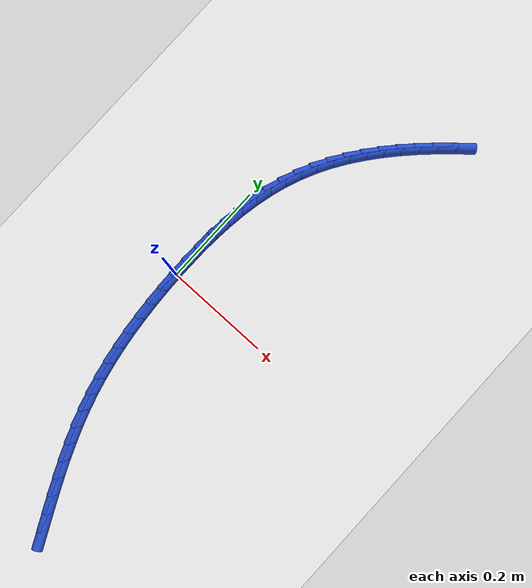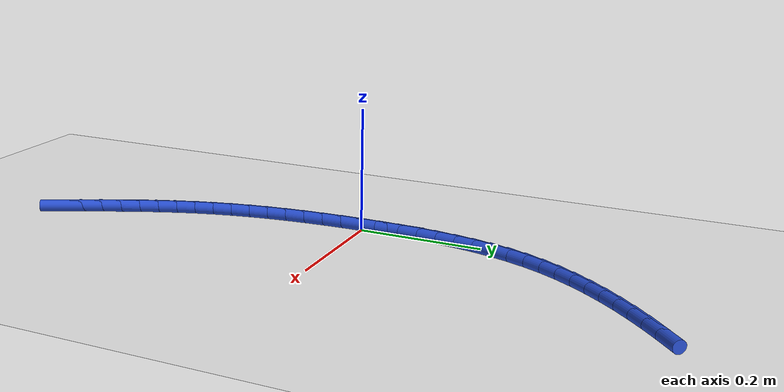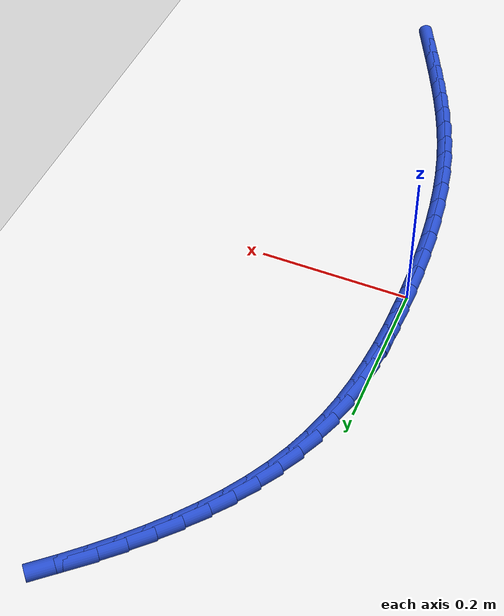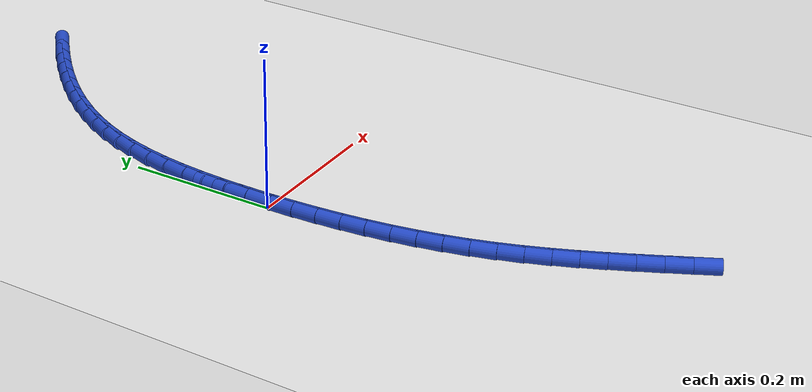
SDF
<sdf version="1.6">
 <world name="default">
  <model name="ground_plane">
   <static>1</static>
   <link name="link">
    <collision name="collision">
     <geometry><plane><normal>0 0 1</normal><size>100 100</size></plane></geometry>
     <surface><friction><ode><mu>100</mu><mu2>50</mu2></ode></friction></surface>
    </collision>
    <visual name="visual">
     <cast_shadows>0</cast_shadows>
     <geometry><plane><normal>0 0 1</normal><size>100 100</size></plane></geometry>
     <material>
      <script><uri>file://media/materials/scripts/gazebo.material</uri><name>Gazebo/WhiteGlow</name></script>
     </material>
    </visual>
   </link>
  </model>
  <model name="line">
   <link name="link_0">
    <pose>-1.2576745200831851e-17 -1.3877787807814457e-17 0.01 0 1.57 -1.5650814311013574</pose>
    <collision name="collision">
     <geometry><cylinder><radius>0.01</radius><length>0.08</length></cylinder></geometry>
    </collision>
    <visual name="visual">
     <material>
      <script><name>Gazebo/Blue</name><uri>file://media/materials/scripts/gazebo.material</uri></script>
     </material>
     <geometry><cylinder><radius>0.01</radius><length>0.08</length></cylinder></geometry>
    </visual>
   </link>
   <link name="link_1">
    <pose>-0.00018875704975839807 0.03302859840996887 0.01 0 1.57 1.5498820778139464</pose>
    <collision name="collision">
     <geometry><cylinder><radius>0.01</radius><length>0.08</length></cylinder></geometry>
    </collision>
    <visual name="visual">
     <material>
      <script><name>Gazebo/Blue</name><uri>file://media/materials/scripts/gazebo.material</uri></script>
     </material>
     <geometry><cylinder><radius>0.01</radius><length>0.08</length></cylinder></geometry>
    </visual>
   </link>
   <link name="link_2">
    <pose>0.0005019491045792355 0.06604940856360342 0.01 0 1.57 1.5181562055893476</pose>
    <collision name="collision">
     <geometry><cylinder><radius>0.01</radius><length>0.08</length></cylinder></geometry>
    </collision>
    <visual name="visual">
     <material>
      <script><name>Gazebo/Blue</name><uri>file://media/materials/scripts/gazebo.material</uri></script>
     </material>
     <geometry><cylinder><radius>0.01</radius><length>0.08</length></cylinder></geometry>
    </visual>
   </link>
   <link name="link_3">
    <pose>0.0022342758914280373 0.09892787406148792 0.01 0 1.57 1.48097839300382</pose>
    <collision name="collision">
     <geometry><cylinder><radius>0.01</radius><length>0.08</length></cylinder></geometry>
    </collision>
    <visual name="visual">
     <material>
      <script><name>Gazebo/Blue</name><uri>file://media/materials/scripts/gazebo.material</uri></script>
     </material>
     <geometry><cylinder><radius>0.01</radius><length>0.08</length></cylinder></geometry>
    </visual>
   </link>
   <link name="link_4">
    <pose>0.005170380739203151 0.1315294385042066 0.01 0 1.57 1.437938783030213</pose>
    <collision name="collision">
     <geometry><cylinder><radius>0.01</radius><length>0.08</length></cylinder></geometry>
    </collision>
    <visual name="visual">
     <material>
      <script><name>Gazebo/Blue</name><uri>file://media/materials/scripts/gazebo.material</uri></script>
     </material>
     <geometry><cylinder><radius>0.01</radius><length>0.08</length></cylinder></geometry>
    </visual>
   </link>
   <link name="link_5">
    <pose>0.009472421076319728 0.16371954549234355 0.01 0 1.57 1.3885987296315616</pose>
    <collision name="collision">
     <geometry><cylinder><radius>0.01</radius><length>0.08</length></cylinder></geometry>
    </collision>
    <visual name="visual">
     <material>
      <script><name>Gazebo/Blue</name><uri>file://media/materials/scripts/gazebo.material</uri></script>
     </material>
     <geometry><cylinder><radius>0.01</radius><length>0.08</length></cylinder></geometry>
    </visual>
   </link>
   <link name="link_6">
    <pose>0.015302554331192916 0.19536363862648312 0.01 0 1.57 1.332531108004683</pose>
    <collision name="collision">
     <geometry><cylinder><radius>0.01</radius><length>0.08</length></cylinder></geometry>
    </collision>
    <visual name="visual">
     <material>
      <script><name>Gazebo/Blue</name><uri>file://media/materials/scripts/gazebo.material</uri></script>
     </material>
     <geometry><cylinder><radius>0.01</radius><length>0.08</length></cylinder></geometry>
    </visual>
   </link>
   <link name="link_7">
    <pose>0.022822937932237854 0.22632716150720936 0.01 0 1.57 1.2693802080843595</pose>
    <collision name="collision">
     <geometry><cylinder><radius>0.01</radius><length>0.08</length></cylinder></geometry>
    </collision>
    <visual name="visual">
     <material>
      <script><name>Gazebo/Blue</name><uri>file://media/materials/scripts/gazebo.material</uri></script>
     </material>
     <geometry><cylinder><radius>0.01</radius><length>0.08</length></cylinder></geometry>
    </visual>
   </link>
   <link name="link_8">
    <pose>0.032195729307869694 0.25647555773510666 0.01 0 1.57 1.1992514912946248</pose>
    <collision name="collision">
     <geometry><cylinder><radius>0.01</radius><length>0.08</length></cylinder></geometry>
    </collision>
    <visual name="visual">
     <material>
      <script><name>Gazebo/Blue</name><uri>file://media/materials/scripts/gazebo.material</uri></script>
     </material>
     <geometry><cylinder><radius>0.01</radius><length>0.08</length></cylinder></geometry>
    </visual>
   </link>
   <link name="link_9">
    <pose>0.04357478084958287 0.28567946065682875 0.01 0 1.57 1.1279907039054222</pose>
    <collision name="collision">
     <geometry><cylinder><radius>0.01</radius><length>0.08</length></cylinder></geometry>
    </collision>
    <visual name="visual">
     <material>
      <script><name>Gazebo/Blue</name><uri>file://media/materials/scripts/gazebo.material</uri></script>
     </material>
     <geometry><cylinder><radius>0.01</radius><length>0.08</length></cylinder></geometry>
    </visual>
   </link>
   <link name="link_10">
    <pose>0.05696001385919434 0.31390569383169914 0.01 0 1.57 1.0612166555067772</pose>
    <collision name="collision">
     <geometry><cylinder><radius>0.01</radius><length>0.08</length></cylinder></geometry>
    </collision>
    <visual name="visual">
     <material>
      <script><name>Gazebo/Blue</name><uri>file://media/materials/scripts/gazebo.material</uri></script>
     </material>
     <geometry><cylinder><radius>0.01</radius><length>0.08</length></cylinder></geometry>
    </visual>
   </link>
   <link name="link_11">
    <pose>0.072215574518545 0.34120592552255874 0.01 0 1.57 0.9995811922866852</pose>
    <collision name="collision">
     <geometry><cylinder><radius>0.01</radius><length>0.08</length></cylinder></geometry>
    </collision>
    <visual name="visual">
     <material>
      <script><name>Gazebo/Blue</name><uri>file://media/materials/scripts/gazebo.material</uri></script>
     </material>
     <geometry><cylinder><radius>0.01</radius><length>0.08</length></cylinder></geometry>
    </visual>
   </link>
   <link name="link_12">
    <pose>0.08920095310589866 0.367634733426309 0.01 0 1.57 0.9433342273357663</pose>
    <collision name="collision">
     <geometry><cylinder><radius>0.01</radius><length>0.08</length></cylinder></geometry>
    </collision>
    <visual name="visual">
     <material>
      <script><name>Gazebo/Blue</name><uri>file://media/materials/scripts/gazebo.material</uri></script>
     </material>
     <geometry><cylinder><radius>0.01</radius><length>0.08</length></cylinder></geometry>
    </visual>
   </link>
   <link name="link_13">
    <pose>0.10777563989951901 0.39324669523985106 0.01 0 1.57 0.8925384946941762</pose>
    <collision name="collision">
     <geometry><cylinder><radius>0.01</radius><length>0.08</length></cylinder></geometry>
    </collision>
    <visual name="visual">
     <material>
      <script><name>Gazebo/Blue</name><uri>file://media/materials/scripts/gazebo.material</uri></script>
     </material>
     <geometry><cylinder><radius>0.01</radius><length>0.08</length></cylinder></geometry>
    </visual>
   </link>
   <link name="link_14">
    <pose>0.1277991251776699 0.4180963886600861 0.01 0 1.57 0.84711855570302</pose>
    <collision name="collision">
     <geometry><cylinder><radius>0.01</radius><length>0.08</length></cylinder></geometry>
    </collision>
    <visual name="visual">
     <material>
      <script><name>Gazebo/Blue</name><uri>file://media/materials/scripts/gazebo.material</uri></script>
     </material>
     <geometry><cylinder><radius>0.01</radius><length>0.08</length></cylinder></geometry>
    </visual>
   </link>
   <link name="link_15">
    <pose>0.14913089921861505 0.4422383913839154 0.01 0 1.57 0.8069075688820014</pose>
    <collision name="collision">
     <geometry><cylinder><radius>0.01</radius><length>0.08</length></cylinder></geometry>
    </collision>
    <visual name="visual">
     <material>
      <script><name>Gazebo/Blue</name><uri>file://media/materials/scripts/gazebo.material</uri></script>
     </material>
     <geometry><cylinder><radius>0.01</radius><length>0.08</length></cylinder></geometry>
    </visual>
   </link>
   <link name="link_16">
    <pose>0.17163045230061832 0.4657272811082405 0.01 0 1.57 0.7716871163484621</pose>
    <collision name="collision">
     <geometry><cylinder><radius>0.01</radius><length>0.08</length></cylinder></geometry>
    </collision>
    <visual name="visual">
     <material>
      <script><name>Gazebo/Blue</name><uri>file://media/materials/scripts/gazebo.material</uri></script>
     </material>
     <geometry><cylinder><radius>0.01</radius><length>0.08</length></cylinder></geometry>
    </visual>
   </link>
   <link name="link_17">
    <pose>0.19515727470194344 0.4886176355299623 0.01 0 1.57 0.741218501211821</pose>
    <collision name="collision">
     <geometry><cylinder><radius>0.01</radius><length>0.08</length></cylinder></geometry>
    </collision>
    <visual name="visual">
     <material>
      <script><name>Gazebo/Blue</name><uri>file://media/materials/scripts/gazebo.material</uri></script>
     </material>
     <geometry><cylinder><radius>0.01</radius><length>0.08</length></cylinder></geometry>
    </visual>
   </link>
   <link name="link_18">
    <pose>0.21957085670085416 0.5109640323459822 0.01 0 1.57 0.7152658964969497</pose>
    <collision name="collision">
     <geometry><cylinder><radius>0.01</radius><length>0.08</length></cylinder></geometry>
    </collision>
    <visual name="visual">
     <material>
      <script><name>Gazebo/Blue</name><uri>file://media/materials/scripts/gazebo.material</uri></script>
     </material>
     <geometry><cylinder><radius>0.01</radius><length>0.08</length></cylinder></geometry>
    </visual>
   </link>
   <link name="link_214">
    <pose>0.13196335850145668 -0.4925157783809495 0.01 0 1.57 -1.1081362393698928</pose>
    <collision name="collision">
     <geometry><cylinder><radius>0.01</radius><length>0.08</length></cylinder></geometry>
    </collision>
    <visual name="visual">
     <material>
      <script><name>Gazebo/Blue</name><uri>file://media/materials/scripts/gazebo.material</uri></script>
     </material>
     <geometry><cylinder><radius>0.01</radius><length>0.08</length></cylinder></geometry>
    </visual>
   </link>
   <link name="link_215">
    <pose>0.1171940470151907 -0.4629040860006696 0.01 0 1.57 -1.1167399252995824</pose>
    <collision name="collision">
     <geometry><cylinder><radius>0.01</radius><length>0.08</length></cylinder></geometry>
    </collision>
    <visual name="visual">
     <material>
      <script><name>Gazebo/Blue</name><uri>file://media/materials/scripts/gazebo.material</uri></script>
     </material>
     <geometry><cylinder><radius>0.01</radius><length>0.08</length></cylinder></geometry>
    </visual>
   </link>
   <link name="link_216">
    <pose>0.10286004587976703 -0.43353521600655054 0.01 0 1.57 -1.1306494755271577</pose>
    <collision name="collision">
     <geometry><cylinder><radius>0.01</radius><length>0.08</length></cylinder></geometry>
    </collision>
    <visual name="visual">
     <material>
      <script><name>Gazebo/Blue</name><uri>file://media/materials/scripts/gazebo.material</uri></script>
     </material>
     <geometry><cylinder><radius>0.01</radius><length>0.08</length></cylinder></geometry>
    </visual>
   </link>
   <link name="link_217">
    <pose>0.08908917205944104 -0.40429520490897114 0.01 0 1.57 -1.1499751610731828</pose>
    <collision name="collision">
     <geometry><cylinder><radius>0.01</radius><length>0.08</length></cylinder></geometry>
    </collision>
    <visual name="visual">
     <material>
      <script><name>Gazebo/Blue</name><uri>file://media/materials/scripts/gazebo.material</uri></script>
     </material>
     <geometry><cylinder><radius>0.01</radius><length>0.08</length></cylinder></geometry>
    </visual>
   </link>
   <link name="link_218">
    <pose>0.07600924251846844 -0.3750700892183106 0.01 0 1.57 -1.1747634226157635</pose>
    <collision name="collision">
     <geometry><cylinder><radius>0.01</radius><length>0.08</length></cylinder></geometry>
    </collision>
    <visual name="visual">
     <material>
      <script><name>Gazebo/Blue</name><uri>file://media/materials/scripts/gazebo.material</uri></script>
     </material>
     <geometry><cylinder><radius>0.01</radius><length>0.08</length></cylinder></geometry>
    </visual>
   </link>
   <link name="link_219">
    <pose>0.06374807422110468 -0.34574590544494793 0.01 0 1.57 -1.2049762463823028</pose>
    <collision name="collision">
     <geometry><cylinder><radius>0.01</radius><length>0.08</length></cylinder></geometry>
    </collision>
    <visual name="visual">
     <material>
      <script><name>Gazebo/Blue</name><uri>file://media/materials/scripts/gazebo.material</uri></script>
     </material>
     <geometry><cylinder><radius>0.01</radius><length>0.08</length></cylinder></geometry>
    </visual>
   </link>
   <link name="link_220">
    <pose>0.05243348413160609 -0.31620869009926394 0.01 0 1.57 -1.2404678990320472</pose>
    <collision name="collision">
     <geometry><cylinder><radius>0.01</radius><length>0.08</length></cylinder></geometry>
    </collision>
    <visual name="visual">
     <material>
      <script><name>Gazebo/Blue</name><uri>file://media/materials/scripts/gazebo.material</uri></script>
     </material>
     <geometry><cylinder><radius>0.01</radius><length>0.08</length></cylinder></geometry>
    </visual>
   </link>
   <link name="link_221">
    <pose>0.042193289214228075 -0.28634447969163745 0.01 0 1.57 -1.2808497550817137</pose>
    <collision name="collision">
     <geometry><cylinder><radius>0.01</radius><length>0.08</length></cylinder></geometry>
    </collision>
    <visual name="visual">
     <material>
      <script><name>Gazebo/Blue</name><uri>file://media/materials/scripts/gazebo.material</uri></script>
     </material>
     <geometry><cylinder><radius>0.01</radius><length>0.08</length></cylinder></geometry>
    </visual>
   </link>
   <link name="link_222">
    <pose>0.03315233018069976 -0.2560417493473811 0.01 0 1.57 -1.3225102496856913</pose>
    <collision name="collision">
     <geometry><cylinder><radius>0.01</radius><length>0.08</length></cylinder></geometry>
    </collision>
    <visual name="visual">
     <material>
      <script><name>Gazebo/Blue</name><uri>file://media/materials/scripts/gazebo.material</uri></script>
     </material>
     <geometry><cylinder><radius>0.01</radius><length>0.08</length></cylinder></geometry>
    </visual>
   </link>
   <link name="link_223">
    <pose>0.025348654484001337 -0.2252600889023388 0.01 0 1.57 -1.3616434223122509</pose>
    <collision name="collision">
     <geometry><cylinder><radius>0.01</radius><length>0.08</length></cylinder></geometry>
    </collision>
    <visual name="visual">
     <material>
      <script><name>Gazebo/Blue</name><uri>file://media/materials/scripts/gazebo.material</uri></script>
     </material>
     <geometry><cylinder><radius>0.01</radius><length>0.08</length></cylinder></geometry>
    </visual>
   </link>
   <link name="link_224">
    <pose>0.018721910246675088 -0.19403971242517754 0.01 0 1.57 -1.3980745718995506</pose>
    <collision name="collision">
     <geometry><cylinder><radius>0.01</radius><length>0.08</length></cylinder></geometry>
    </collision>
    <visual name="visual">
     <material>
      <script><name>Gazebo/Blue</name><uri>file://media/materials/scripts/gazebo.material</uri></script>
     </material>
     <geometry><cylinder><radius>0.01</radius><length>0.08</length></cylinder></geometry>
    </visual>
   </link>
   <link name="link_225">
    <pose>0.013206436656764933 -0.16242518390004484 0.01 0 1.57 -1.4318572611655231</pose>
    <collision name="collision">
     <geometry><cylinder><radius>0.01</radius><length>0.08</length></cylinder></geometry>
    </collision>
    <visual name="visual">
     <material>
      <script><name>Gazebo/Blue</name><uri>file://media/materials/scripts/gazebo.material</uri></script>
     </material>
     <geometry><cylinder><radius>0.01</radius><length>0.08</length></cylinder></geometry>
    </visual>
   </link>
   <link name="link_226">
    <pose>0.008736572902314997 -0.13046106731108903 0.01 0 1.57 -1.4630648286528458</pose>
    <collision name="collision">
     <geometry><cylinder><radius>0.01</radius><length>0.08</length></cylinder></geometry>
    </collision>
    <visual name="visual">
     <material>
      <script><name>Gazebo/Blue</name><uri>file://media/materials/scripts/gazebo.material</uri></script>
     </material>
     <geometry><cylinder><radius>0.01</radius><length>0.08</length></cylinder></geometry>
    </visual>
   </link>
   <link name="link_227">
    <pose>0.0052466581713694034 -0.09819192664245836 0.01 0 1.57 -1.4917832344409274</pose>
    <collision name="collision">
     <geometry><cylinder><radius>0.01</radius><length>0.08</length></cylinder></geometry>
    </collision>
    <visual name="visual">
     <material>
      <script><name>Gazebo/Blue</name><uri>file://media/materials/scripts/gazebo.material</uri></script>
     </material>
     <geometry><cylinder><radius>0.01</radius><length>0.08</length></cylinder></geometry>
    </visual>
   </link>
   <link name="link_228">
    <pose>0.002671031651972235 -0.06566232587830045 0.01 0 1.57 -1.518105095082257</pose>
    <collision name="collision">
     <geometry><cylinder><radius>0.01</radius><length>0.08</length></cylinder></geometry>
    </collision>
    <visual name="visual">
     <material>
      <script><name>Gazebo/Blue</name><uri>file://media/materials/scripts/gazebo.material</uri></script>
     </material>
     <geometry><cylinder><radius>0.01</radius><length>0.08</length></cylinder></geometry>
    </visual>
   </link>
   <link name="link_229">
    <pose>0.0009440325321677467 -0.03291682900276519 0.01 0 1.57 -1.542124857976321</pose>
    <collision name="collision">
     <geometry><cylinder><radius>0.01</radius><length>0.08</length></cylinder></geometry>
    </collision>
    <visual name="visual">
     <material>
      <script><name>Gazebo/Blue</name><uri>file://media/materials/scripts/gazebo.material</uri></script>
     </material>
     <geometry><cylinder><radius>0.01</radius><length>0.08</length></cylinder></geometry>
    </visual>
   </link>
   <link name="link_230">
    <pose>-7.37257477290143e-18 -1.3183898417423734e-16 0.01 0 1.57 -1.5639349915252065</pose>
    <collision name="collision">
     <geometry><cylinder><radius>0.01</radius><length>0.08</length></cylinder></geometry>
    </collision>
    <visual name="visual">
     <material>
      <script><name>Gazebo/Blue</name><uri>file://media/materials/scripts/gazebo.material</uri></script>
     </material>
     <geometry><cylinder><radius>0.01</radius><length>0.08</length></cylinder></geometry>
    </visual>
   </link>
   <link name="link_231">
    <pose>-0.00022672675648689787 0.033043597145846454 0.01 0 1.57 1.5579696211119607</pose>
    <collision name="collision">
     <geometry><cylinder><radius>0.01</radius><length>0.08</length></cylinder></geometry>
    </collision>
    <visual name="visual">
     <material>
      <script><name>Gazebo/Blue</name><uri>file://media/materials/scripts/gazebo.material</uri></script>
     </material>
     <geometry><cylinder><radius>0.01</radius><length>0.08</length></cylinder></geometry>
    </visual>
   </link>
   <link name="link_232">
    <pose>0.0001981914507512032 0.06616939845062617 0.01 0 1.57 1.5678011226262527</pose>
    <collision name="collision">
     <geometry><cylinder><radius>0.01</radius><length>0.08</length></cylinder></geometry>
    </collision>
    <visual name="visual">
     <material>
      <script><name>Gazebo/Blue</name><uri>file://media/materials/scripts/gazebo.material</uri></script>
     </material>
     <geometry><cylinder><radius>0.01</radius><length>0.08</length></cylinder></geometry>
    </visual>
   </link>
  </model>
 </world>
</sdf>
